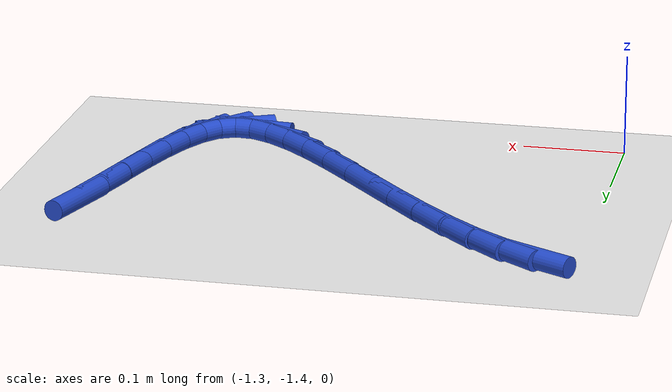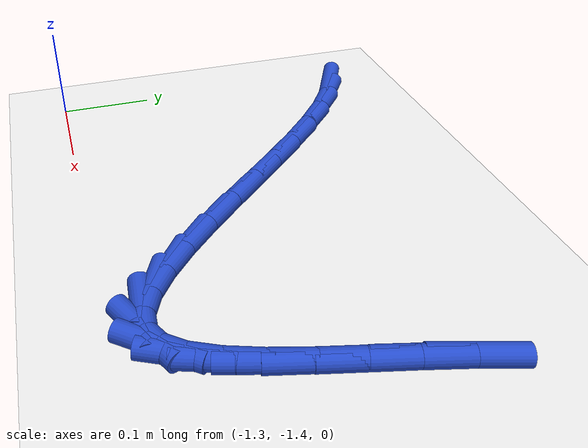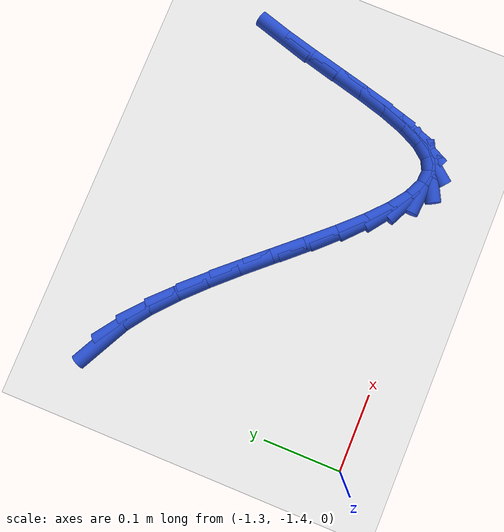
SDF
<sdf version="1.6">
 <world name="default">
  <model name="ground_plane">
   <static>1</static>
   <link name="link">
    <collision name="collision">
     <geometry><plane><normal>0 0 1</normal><size>100 100</size></plane></geometry>
     <surface><friction><ode><mu>100</mu><mu2>50</mu2></ode></friction></surface>
    </collision>
    <visual name="visual">
     <cast_shadows>0</cast_shadows>
     <geometry><plane><normal>0 0 1</normal><size>100 100</size></plane></geometry>
     <material>
      <script><uri>file://media/materials/scripts/gazebo.material</uri><name>Gazebo/WhiteGlow</name></script>
     </material>
    </visual>
   </link>
  </model>
  <model name="line">
   <link name="link_194">
    <pose>-1.2617276677376197 -1.0700194370520126 0.01 0 1.57 -0.47940807908737926</pose>
    <collision name="collision">
     <geometry><cylinder><radius>0.01</radius><length>0.08</length></cylinder></geometry>
    </collision>
    <visual name="visual">
     <material>
      <script><name>Gazebo/Blue</name><uri>file://media/materials/scripts/gazebo.material</uri></script>
     </material>
     <geometry><cylinder><radius>0.01</radius><length>0.08</length></cylinder></geometry>
    </visual>
   </link>
   <link name="link_195">
    <pose>-1.2328933329883995 -1.085009217501796 0.01 0 1.57 -0.6236091384055408</pose>
    <collision name="collision">
     <geometry><cylinder><radius>0.01</radius><length>0.08</length></cylinder></geometry>
    </collision>
    <visual name="visual">
     <material>
      <script><name>Gazebo/Blue</name><uri>file://media/materials/scripts/gazebo.material</uri></script>
     </material>
     <geometry><cylinder><radius>0.01</radius><length>0.08</length></cylinder></geometry>
    </visual>
   </link>
   <link name="link_196">
    <pose>-1.2033850321792114 -1.1062366539990773 0.01 0 1.57 -0.718006966680914</pose>
    <collision name="collision">
     <geometry><cylinder><radius>0.01</radius><length>0.08</length></cylinder></geometry>
    </collision>
    <visual name="visual">
     <material>
      <script><name>Gazebo/Blue</name><uri>file://media/materials/scripts/gazebo.material</uri></script>
     </material>
     <geometry><cylinder><radius>0.01</radius><length>0.08</length></cylinder></geometry>
    </visual>
   </link>
   <link name="link_197">
    <pose>-1.173478392224689 -1.132361535866095 0.01 0 1.57 -0.7795830039402393</pose>
    <collision name="collision">
     <geometry><cylinder><radius>0.01</radius><length>0.08</length></cylinder></geometry>
    </collision>
    <visual name="visual">
     <material>
      <script><name>Gazebo/Blue</name><uri>file://media/materials/scripts/gazebo.material</uri></script>
     </material>
     <geometry><cylinder><radius>0.01</radius><length>0.08</length></cylinder></geometry>
    </visual>
   </link>
   <link name="link_198">
    <pose>-1.1434490400394697 -1.1620436524250846 0.01 0 1.57 -0.8181292322221547</pose>
    <collision name="collision">
     <geometry><cylinder><radius>0.01</radius><length>0.08</length></cylinder></geometry>
    </collision>
    <visual name="visual">
     <material>
      <script><name>Gazebo/Blue</name><uri>file://media/materials/scripts/gazebo.material</uri></script>
     </material>
     <geometry><cylinder><radius>0.01</radius><length>0.08</length></cylinder></geometry>
    </visual>
   </link>
   <link name="link_199">
    <pose>-1.1135726025381887 -1.1939427929982864 0.01 0 1.57 -0.8388324970022124</pose>
    <collision name="collision">
     <geometry><cylinder><radius>0.01</radius><length>0.08</length></cylinder></geometry>
    </collision>
    <visual name="visual">
     <material>
      <script><name>Gazebo/Blue</name><uri>file://media/materials/scripts/gazebo.material</uri></script>
     </material>
     <geometry><cylinder><radius>0.01</radius><length>0.08</length></cylinder></geometry>
    </visual>
   </link>
   <link name="link_200">
    <pose>-1.08412470663548 -1.2267187469079368 0.01 0 1.57 -0.8437831955354406</pose>
    <collision name="collision">
     <geometry><cylinder><radius>0.01</radius><length>0.08</length></cylinder></geometry>
    </collision>
    <visual name="visual">
     <material>
      <script><name>Gazebo/Blue</name><uri>file://media/materials/scripts/gazebo.material</uri></script>
     </material>
     <geometry><cylinder><radius>0.01</radius><length>0.08</length></cylinder></geometry>
    </visual>
   </link>
   <link name="link_201">
    <pose>-1.0553809792459807 -1.2590313034762748 0.01 0 1.57 -0.8324696118450646</pose>
    <collision name="collision">
     <geometry><cylinder><radius>0.01</radius><length>0.08</length></cylinder></geometry>
    </collision>
    <visual name="visual">
     <material>
      <script><name>Gazebo/Blue</name><uri>file://media/materials/scripts/gazebo.material</uri></script>
     </material>
     <geometry><cylinder><radius>0.01</radius><length>0.08</length></cylinder></geometry>
    </visual>
   </link>
   <link name="link_202">
    <pose>-1.0276170472843247 -1.2895402520255375 0.01 0 1.57 -0.8012973686537174</pose>
    <collision name="collision">
     <geometry><cylinder><radius>0.01</radius><length>0.08</length></cylinder></geometry>
    </collision>
    <visual name="visual">
     <material>
      <script><name>Gazebo/Blue</name><uri>file://media/materials/scripts/gazebo.material</uri></script>
     </material>
     <geometry><cylinder><radius>0.01</radius><length>0.08</length></cylinder></geometry>
    </visual>
   </link>
   <link name="link_203">
    <pose>-1.0011085376651476 -1.316905381877963 0.01 0 1.57 -0.7416229095968786</pose>
    <collision name="collision">
     <geometry><cylinder><radius>0.01</radius><length>0.08</length></cylinder></geometry>
    </collision>
    <visual name="visual">
     <material>
      <script><name>Gazebo/Blue</name><uri>file://media/materials/scripts/gazebo.material</uri></script>
     </material>
     <geometry><cylinder><radius>0.01</radius><length>0.08</length></cylinder></geometry>
    </visual>
   </link>
   <link name="link_204">
    <pose>-0.9761310773030849 -1.3397864823557906 0.01 0 1.57 -0.634569280562448</pose>
    <collision name="collision">
     <geometry><cylinder><radius>0.01</radius><length>0.08</length></cylinder></geometry>
    </collision>
    <visual name="visual">
     <material>
      <script><name>Gazebo/Blue</name><uri>file://media/materials/scripts/gazebo.material</uri></script>
     </material>
     <geometry><cylinder><radius>0.01</radius><length>0.08</length></cylinder></geometry>
    </visual>
   </link>
   <link name="link_205">
    <pose>-0.9529602931127724 -1.3568433427812556 0.01 0 1.57 -0.4386158222335537</pose>
    <collision name="collision">
     <geometry><cylinder><radius>0.01</radius><length>0.08</length></cylinder></geometry>
    </collision>
    <visual name="visual">
     <material>
      <script><name>Gazebo/Blue</name><uri>file://media/materials/scripts/gazebo.material</uri></script>
     </material>
     <geometry><cylinder><radius>0.01</radius><length>0.08</length></cylinder></geometry>
    </visual>
   </link>
   <link name="link_206">
    <pose>-0.9318718120088457 -1.3667357524765975 0.01 0 1.57 -0.07395496990869628</pose>
    <collision name="collision">
     <geometry><cylinder><radius>0.01</radius><length>0.08</length></cylinder></geometry>
    </collision>
    <visual name="visual">
     <material>
      <script><name>Gazebo/Blue</name><uri>file://media/materials/scripts/gazebo.material</uri></script>
     </material>
     <geometry><cylinder><radius>0.01</radius><length>0.08</length></cylinder></geometry>
    </visual>
   </link>
   <link name="link_207">
    <pose>-0.9131412609059395 -1.3681235007640538 0.01 0 1.57 0.46779616251502776</pose>
    <collision name="collision">
     <geometry><cylinder><radius>0.01</radius><length>0.08</length></cylinder></geometry>
    </collision>
    <visual name="visual">
     <material>
      <script><name>Gazebo/Blue</name><uri>file://media/materials/scripts/gazebo.material</uri></script>
     </material>
     <geometry><cylinder><radius>0.01</radius><length>0.08</length></cylinder></geometry>
    </visual>
   </link>
   <link name="link_208">
    <pose>-0.8969642182544888 -1.3599509154251113 0.01 0 1.57 0.8850173392372848</pose>
    <collision name="collision">
     <geometry><cylinder><radius>0.01</radius><length>0.08</length></cylinder></geometry>
    </collision>
    <visual name="visual">
     <material>
      <script><name>Gazebo/Blue</name><uri>file://media/materials/scripts/gazebo.material</uri></script>
     </material>
     <geometry><cylinder><radius>0.01</radius><length>0.08</length></cylinder></geometry>
    </visual>
   </link>
   <link name="link_209">
    <pose>-0.8830383635713318 -1.3429321445225477 0.01 0 1.57 1.1093609130528042</pose>
    <collision name="collision">
     <geometry><cylinder><radius>0.01</radius><length>0.08</length></cylinder></geometry>
    </collision>
    <visual name="visual">
     <material>
      <script><name>Gazebo/Blue</name><uri>file://media/materials/scripts/gazebo.material</uri></script>
     </material>
     <geometry><cylinder><radius>0.01</radius><length>0.08</length></cylinder></geometry>
    </visual>
   </link>
   <link name="link_210">
    <pose>-0.8708702467278259 -1.3184607212314594 0.01 0 1.57 1.2277445466514418</pose>
    <collision name="collision">
     <geometry><cylinder><radius>0.01</radius><length>0.08</length></cylinder></geometry>
    </collision>
    <visual name="visual">
     <material>
      <script><name>Gazebo/Blue</name><uri>file://media/materials/scripts/gazebo.material</uri></script>
     </material>
     <geometry><cylinder><radius>0.01</radius><length>0.08</length></cylinder></geometry>
    </visual>
   </link>
   <link name="link_211">
    <pose>-0.8599660235033406 -1.287931579557405 0.01 0 1.57 1.290413624901348</pose>
    <collision name="collision">
     <geometry><cylinder><radius>0.01</radius><length>0.08</length></cylinder></geometry>
    </collision>
    <visual name="visual">
     <material>
      <script><name>Gazebo/Blue</name><uri>file://media/materials/scripts/gazebo.material</uri></script>
     </material>
     <geometry><cylinder><radius>0.01</radius><length>0.08</length></cylinder></geometry>
    </visual>
   </link>
   <link name="link_212">
    <pose>-0.8498318496772461 -1.252739653505942 0.01 0 1.57 1.3198793367473787</pose>
    <collision name="collision">
     <geometry><cylinder><radius>0.01</radius><length>0.08</length></cylinder></geometry>
    </collision>
    <visual name="visual">
     <material>
      <script><name>Gazebo/Blue</name><uri>file://media/materials/scripts/gazebo.material</uri></script>
     </material>
     <geometry><cylinder><radius>0.01</radius><length>0.08</length></cylinder></geometry>
    </visual>
   </link>
   <link name="link_213">
    <pose>-0.8399738810289117 -1.2142798770826275 0.01 0 1.57 1.3259942149999093</pose>
    <collision name="collision">
     <geometry><cylinder><radius>0.01</radius><length>0.08</length></cylinder></geometry>
    </collision>
    <visual name="visual">
     <material>
      <script><name>Gazebo/Blue</name><uri>file://media/materials/scripts/gazebo.material</uri></script>
     </material>
     <geometry><cylinder><radius>0.01</radius><length>0.08</length></cylinder></geometry>
    </visual>
   </link>
   <link name="link_214">
    <pose>-0.8298982733377083 -1.1739471842930214 0.01 0 1.57 1.312385779042004</pose>
    <collision name="collision">
     <geometry><cylinder><radius>0.01</radius><length>0.08</length></cylinder></geometry>
    </collision>
    <visual name="visual">
     <material>
      <script><name>Gazebo/Blue</name><uri>file://media/materials/scripts/gazebo.material</uri></script>
     </material>
     <geometry><cylinder><radius>0.01</radius><length>0.08</length></cylinder></geometry>
    </visual>
   </link>
   <link name="link_215">
    <pose>-0.819111182383005 -1.133136509142681 0.01 0 1.57 1.2787807699582867</pose>
    <collision name="collision">
     <geometry><cylinder><radius>0.01</radius><length>0.08</length></cylinder></geometry>
    </collision>
    <visual name="visual">
     <material>
      <script><name>Gazebo/Blue</name><uri>file://media/materials/scripts/gazebo.material</uri></script>
     </material>
     <geometry><cylinder><radius>0.01</radius><length>0.08</length></cylinder></geometry>
    </visual>
   </link>
  </model>
 </world>
</sdf>
